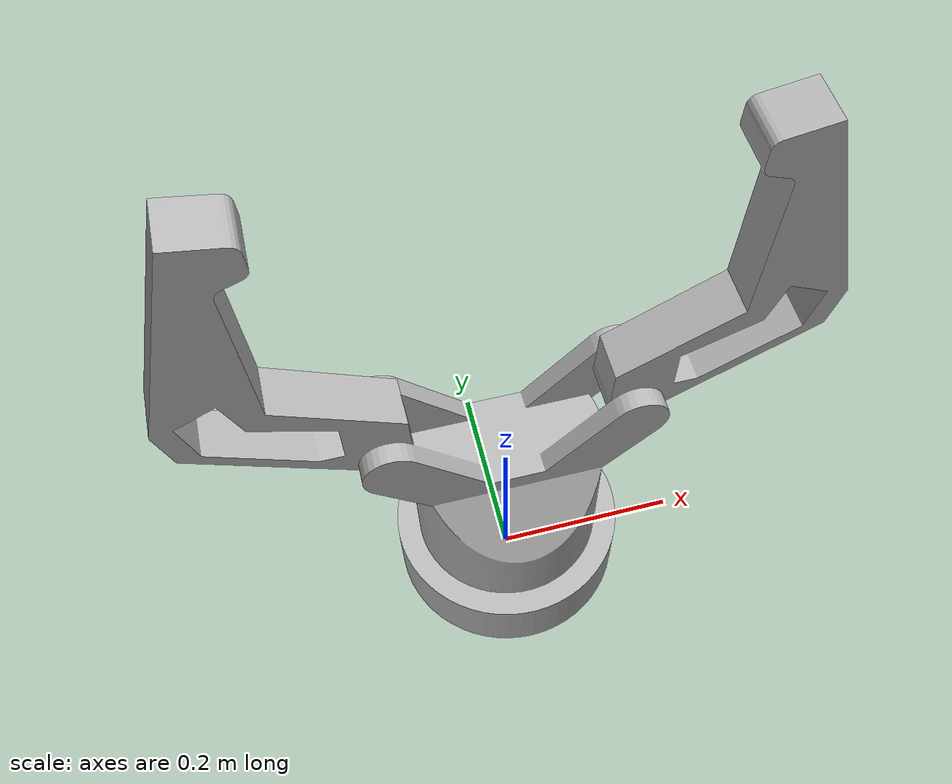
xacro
<?xml version="1.0" ?>
<robot name="Gripper" xmlns:xacro="http://www.ros.org/wiki/xacro">

<xacro:include filename="$(find Gripper_description)/urdf/materials.xacro" />
<xacro:include filename="$(find Gripper_description)/urdf/Gripper.trans" />
<xacro:include filename="$(find Gripper_description)/urdf/Gripper.gazebo" />
<link name="base_link">
  <inertial>
    <origin xyz="0.0 -3.2606564537310286e-17 0.11289552544712034" rpy="0 0 0"/>
    <mass value="70.06720037124329"/>
    <inertia ixx="0.63631" iyy="0.698888" izz="0.452049" ixy="0.0" iyz="-0.0" ixz="-0.0"/>
  </inertial>
  <visual>
    <origin xyz="0 0 0" rpy="0 0 0"/>
    <geometry>
      <mesh filename="file://$(find Gripper_description)/meshes/base_link.stl" scale="0.001 0.001 0.001"/>
    </geometry>
    <material name="silver"/>
  </visual>
  <collision>
    <origin xyz="0 0 0" rpy="0 0 0"/>
    <geometry>
      <mesh filename="file://$(find Gripper_description)/meshes/base_link.stl" scale="0.001 0.001 0.001"/>
    </geometry>
  </collision>
</link>

<link name="gripper_1_1">
  <inertial>
    <origin xyz="-0.09946048127226001 -0.028182181818181825 0.14649874253143086" rpy="0 0 0"/>
    <mass value="8.96261797713013"/>
    <inertia ixx="0.085405" iyy="0.10949" izz="0.027819" ixy="0.0" iyz="-0.0" ixz="0.024967"/>
  </inertial>
  <visual>
    <origin xyz="0.12 -0.028182 -0.3" rpy="0 0 0"/>
    <geometry>
      <mesh filename="file://$(find Gripper_description)/meshes/gripper_1_1.stl" scale="0.001 0.001 0.001"/>
    </geometry>
    <material name="silver"/>
  </visual>
  <collision>
    <origin xyz="0.12 -0.028182 -0.3" rpy="0 0 0"/>
    <geometry>
      <mesh filename="file://$(find Gripper_description)/meshes/gripper_1_1.stl" scale="0.001 0.001 0.001"/>
    </geometry>
  </collision>
</link>

<link name="gripper_2_1">
  <inertial>
    <origin xyz="0.09946048127225995 -0.028182181818181818 0.14649874253143097" rpy="0 0 0"/>
    <mass value="8.96261797713013"/>
    <inertia ixx="0.085405" iyy="0.10949" izz="0.027819" ixy="-0.0" iyz="0.0" ixz="-0.024967"/>
  </inertial>
  <visual>
    <origin xyz="-0.12 -0.028182 -0.3" rpy="0 0 0"/>
    <geometry>
      <mesh filename="file://$(find Gripper_description)/meshes/gripper_2_1.stl" scale="0.001 0.001 0.001"/>
    </geometry>
    <material name="silver"/>
  </visual>
  <collision>
    <origin xyz="-0.12 -0.028182 -0.3" rpy="0 0 0"/>
    <geometry>
      <mesh filename="file://$(find Gripper_description)/meshes/gripper_2_1.stl" scale="0.001 0.001 0.001"/>
    </geometry>
  </collision>
</link>

<joint name="Revolute 1" type="revolute">
  <origin xyz="-0.12 0.028182 0.3" rpy="0 0 0"/>
  <parent link="base_link"/>
  <child link="gripper_1_1"/>
  <axis xyz="0.0 -1.0 0.0"/>
  <limit upper="1.658063" lower="-0.610865" effort="100" velocity="100"/>
</joint>

<joint name="Revolute 2" type="revolute">
  <origin xyz="0.12 0.028182 0.3" rpy="0 0 0"/>
  <parent link="base_link"/>
  <child link="gripper_2_1"/>
  <axis xyz="0.0 1.0 0.0"/>
  <limit upper="1.658063" lower="-0.610865" effort="100" velocity="100"/>
</joint>

</robot>

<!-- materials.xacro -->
<robot name="Gripper" xmlns:xacro="http://www.ros.org/wiki/xacro" >

<material name="silver">
  <color rgba="0.700 0.700 0.700 1.000"/>
</material>

</robot>

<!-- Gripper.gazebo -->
<robot name="Gripper" xmlns:xacro="http://www.ros.org/wiki/xacro" >

<xacro:property name="body_color" value="Gazebo/Silver" />

<gazebo>
  <plugin name="control" filename="libgazebo_ros_control.so"/>
</gazebo>
<gazebo reference="base_link">
  <material>${body_color}</material>
  <mu1>0.2</mu1>
  <mu2>0.2</mu2>
  <self_collide>true</self_collide>
  <gravity>true</gravity>
</gazebo>

<gazebo reference="gripper_1_1">
  <material>${body_color}</material>
  <mu1>0.2</mu1>
  <mu2>0.2</mu2>
  <self_collide>true</self_collide>
</gazebo>

<gazebo reference="gripper_2_1">
  <material>${body_color}</material>
  <mu1>0.2</mu1>
  <mu2>0.2</mu2>
  <self_collide>true</self_collide>
</gazebo>

</robot>
